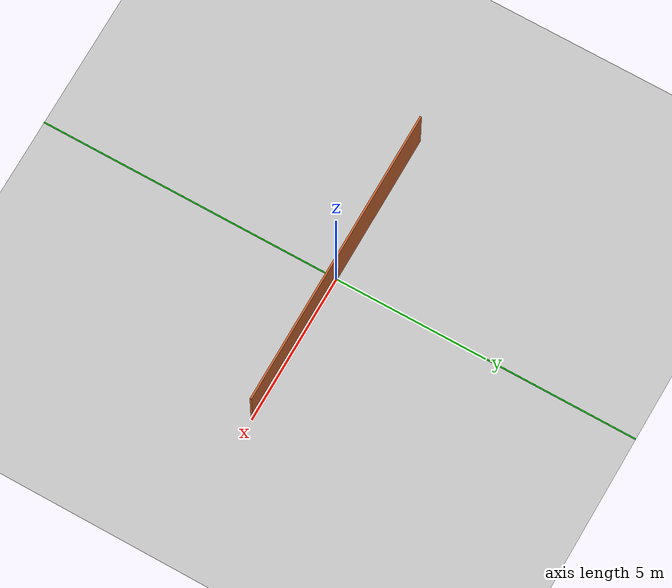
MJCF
<mujoco model="world">
  <compiler angle="radian" coordinate="local" inertiafromgeom="true"/>

  <option timestep="0.002" integrator="RK4" gravity="0 0 -9.81"/>

<default>
  <geom contype="1" conaffinity="1" friction="3 3 3"
        solimp="0.995 0.995 0.001" solref="0.005 0.3"/>
</default>

  <worldbody>
    <!-- Checkered ground plane -->
    <geom name="ground" type="plane" size="10 10 0.1"
          rgba="0.8 0.8 0.8 1" material="checkerboard"/>

    <!-- 2m high rectangular wall -->
    <geom name="wall" type="box" size="5 0.03 1.0"
          pos="0 0 1.0" rgba="0.8 0.4 0.2 1"/>

    <!-- Green Y-axis (centered at origin, extends both ways) -->
    <geom name="y_axis" type="cylinder" size="0.02 10"
          pos="0 0 0.01" rgba="0 1 0 1" euler="1.5708 0 0"
          contype="0" conaffinity="0"/>

    <!-- Falling cylindrical rod -->
    <body name="rod" pos="0 0 0">
      <freejoint name="rod_joint"/>
      <geom name="rod_geom" type="cylinder" size="0.05 0.96"
            rgba="0 0 1 1" mass="2"/>
      <inertial pos="0 0 0" mass="2" diaginertia="0.167 0.167 0.0025"/>
    </body>

    <!-- Light source -->
    <light directional="true" ambient="0.2 0.2 0.2" diffuse="0.8 0.8 0.8"
           specular="0.3 0.3 0.3" castshadow="false" pos="0 0 20" dir="0 0 -1"/>
  </worldbody>

  <asset>
    <!-- Checkered texture with bigger squares -->
    <texture name="checker_texture" type="2d" builtin="checker"
             rgb1="0.2 0.2 0.2" rgb2="0.8 0.8 0.8" width="512" height="512"/>

    <!-- Material with bigger squares -->
    <material name="checkerboard" texture="checker_texture"
              texrepeat="2 2" texuniform="true" reflectance="0.1"/>
  </asset>

  <visual>
    <global offwidth="1280" offheight="720"/>
  </visual>

  <statistic extent="10" center="0 0 1"/>
</mujoco>
